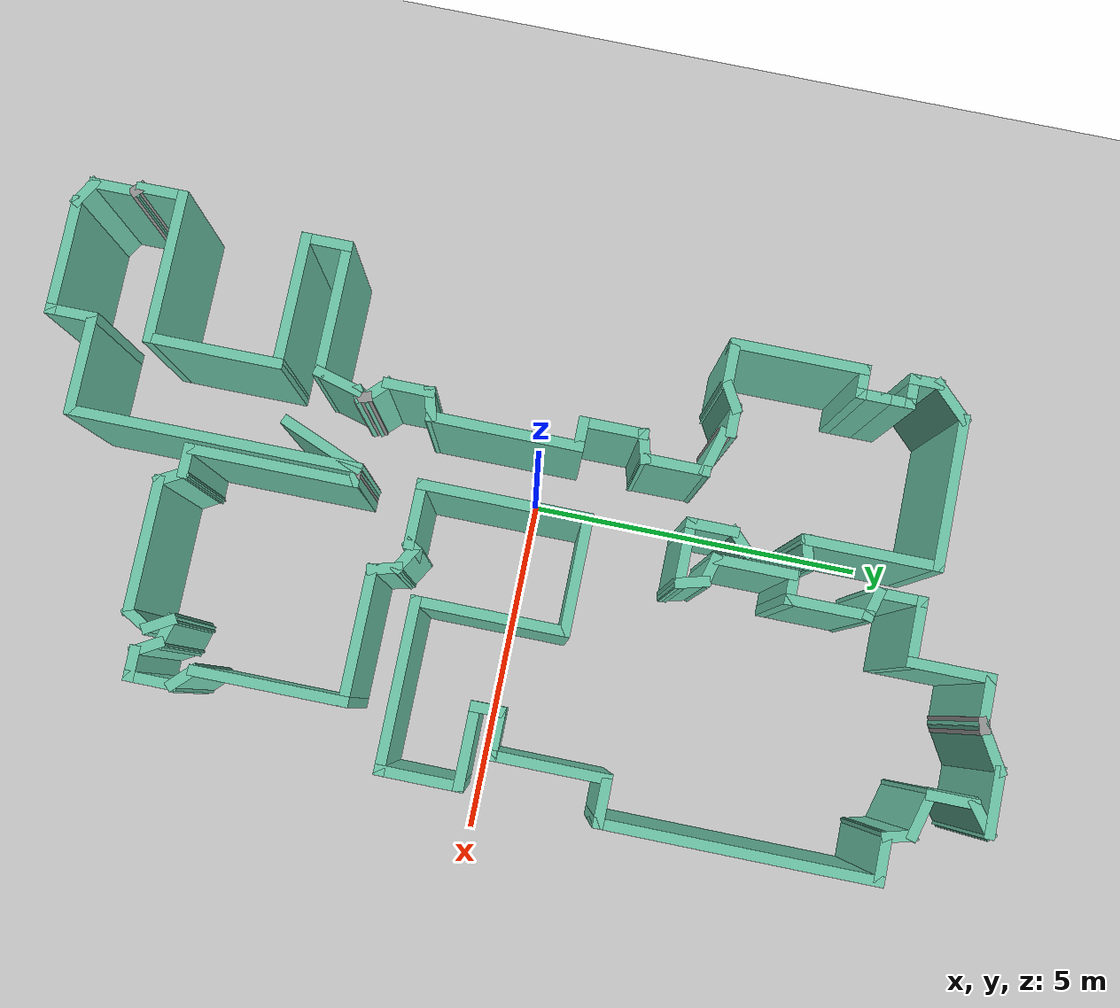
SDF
<sdf version="1.7">
 <world name="default">
  <model name="ground_plane">
   <static>1</static>
   <link name="link">
    <collision name="collision">
     <geometry><plane><normal>0 0 1</normal><size>100 100</size></plane></geometry>
     <surface>
      <contact><collide_bitmask>65535</collide_bitmask></contact>
      <friction><ode><mu>100</mu><mu2>50</mu2></ode></friction>
     </surface>
    </collision>
    <visual name="visual">
     <cast_shadows>0</cast_shadows>
     <geometry><plane><normal>0 0 1</normal><size>100 100</size></plane></geometry>
     <material>
      <script><uri>file://media/materials/scripts/gazebo.material</uri><name>Gazebo/Grey</name></script>
     </material>
    </visual>
   </link>
  </model>
  <model name="map_7">
   <pose>0.65828 -0.13295 0 0 -0 0</pose>
   <link name="Wall_0">
    <collision name="Wall_0_Collision">
     <geometry><box><size>1 0.15 2.5</size></box></geometry>
     <pose>0 0 1.25 0 -0 0</pose>
    </collision>
    <visual name="Wall_0_Visual">
     <pose>0 0 1.25 0 -0 0</pose>
     <geometry><box><size>1 0.15 2.5</size></box></geometry>
     <material>
      <script><uri>file://media/materials/scripts/gazebo.material</uri><name>Gazebo/Grey</name></script>
      <ambient>0.435294 0.796078 0.67451 1</ambient>
     </material>
     <meta><layer>0</layer></meta>
    </visual>
    <pose>2.38063 7.06866 0 0 -0 3.14159</pose>
   </link>
   <link name="Wall_1">
    <collision name="Wall_1_Collision">
     <geometry><box><size>0.75 0.15 2.5</size></box></geometry>
     <pose>0 0 1.25 0 -0 0</pose>
    </collision>
    <visual name="Wall_1_Visual">
     <pose>0 0 1.25 0 -0 0</pose>
     <geometry><box><size>0.75 0.15 2.5</size></box></geometry>
     <material>
      <script><uri>file://media/materials/scripts/gazebo.material</uri><name>Gazebo/Grey</name></script>
      <ambient>0.435294 0.796078 0.67451 1</ambient>
     </material>
     <meta><layer>0</layer></meta>
    </visual>
    <pose>1.69582 6.91866 0 0 -0 -2.61799</pose>
   </link>
   <link name="Wall_10">
    <collision name="Wall_10_Collision">
     <geometry><box><size>1.25 0.15 2.5</size></box></geometry>
     <pose>0 0 1.25 0 -0 0</pose>
    </collision>
    <visual name="Wall_10_Visual">
     <pose>0 0 1.25 0 -0 0</pose>
     <geometry><box><size>1.25 0.15 2.5</size></box></geometry>
     <material>
      <script><uri>file://media/materials/scripts/gazebo.material</uri><name>Gazebo/Grey</name></script>
      <ambient>0.435294 0.796078 0.67451 1</ambient>
     </material>
     <meta><layer>0</layer></meta>
    </visual>
    <pose>0.73942 6.19278 0 0 -0 -1.5708</pose>
   </link>
   <link name="Wall_100">
    <collision name="Wall_100_Collision">
     <geometry><box><size>0.5 0.15 2.5</size></box></geometry>
     <pose>0 0 1.25 0 -0 0</pose>
    </collision>
    <visual name="Wall_100_Visual">
     <pose>0 0 1.25 0 -0 0</pose>
     <geometry><box><size>0.5 0.15 2.5</size></box></geometry>
     <material>
      <script><uri>file://media/materials/scripts/gazebo.material</uri><name>Gazebo/Grey</name></script>
      <ambient>0.435294 0.796078 0.67451 1</ambient>
     </material>
     <meta><layer>0</layer></meta>
    </visual>
    <pose>0.92429 -1.69529 0 0 -0 1.8326</pose>
   </link>
   <link name="Wall_101">
    <collision name="Wall_101_Collision">
     <geometry><box><size>0.5 0.15 2.5</size></box></geometry>
     <pose>0 0 1.25 0 -0 0</pose>
    </collision>
    <visual name="Wall_101_Visual">
     <pose>0 0 1.25 0 -0 0</pose>
     <geometry><box><size>0.5 0.15 2.5</size></box></geometry>
     <material>
      <script><uri>file://media/materials/scripts/gazebo.material</uri><name>Gazebo/Grey</name></script>
      <ambient>0.435294 0.796078 0.67451 1</ambient>
     </material>
     <meta><layer>0</layer></meta>
    </visual>
    <pose>0.727443 -1.43876 0 0 -0 2.61799</pose>
   </link>
   <link name="Wall_102">
    <collision name="Wall_102_Collision">
     <geometry><box><size>0.25 0.15 2.5</size></box></geometry>
     <pose>0 0 1.25 0 -0 0</pose>
    </collision>
    <visual name="Wall_102_Visual">
     <pose>0 0 1.25 0 -0 0</pose>
     <geometry><box><size>0.25 0.15 2.5</size></box></geometry>
     <material>
      <script><uri>file://media/materials/scripts/gazebo.material</uri><name>Gazebo/Grey</name></script>
      <ambient>0.435294 0.796078 0.67451 1</ambient>
     </material>
     <meta><layer>0</layer></meta>
    </visual>
    <pose>0.550888 -1.39456 0 0 -0 -2.0944</pose>
   </link>
   <link name="Wall_103">
    <collision name="Wall_103_Collision">
     <geometry><box><size>1 0.15 2.5</size></box></geometry>
     <pose>0 0 1.25 0 -0 0</pose>
    </collision>
    <visual name="Wall_103_Visual">
     <pose>0 0 1.25 0 -0 0</pose>
     <geometry><box><size>1 0.15 2.5</size></box></geometry>
     <material>
      <script><uri>file://media/materials/scripts/gazebo.material</uri><name>Gazebo/Grey</name></script>
      <ambient>0.435294 0.796078 0.67451 1</ambient>
     </material>
     <meta><layer>0</layer></meta>
    </visual>
    <pose>0.100888 -1.43786 0 0 -0 3.14159</pose>
   </link>
   <link name="Wall_104">
    <collision name="Wall_104_Collision">
     <geometry><box><size>2.5 0.15 2.5</size></box></geometry>
     <pose>0 0 1.25 0 -0 0</pose>
    </collision>
    <visual name="Wall_104_Visual">
     <pose>0 0 1.25 0 -0 0</pose>
     <geometry><box><size>2.5 0.15 2.5</size></box></geometry>
     <material>
      <script><uri>file://media/materials/scripts/gazebo.material</uri><name>Gazebo/Grey</name></script>
      <ambient>0.435294 0.796078 0.67451 1</ambient>
     </material>
     <meta><layer>0</layer></meta>
    </visual>
    <pose>-0.324112 -0.26286 0 0 -0 1.5708</pose>
   </link>
   <link name="Wall_105">
    <collision name="Wall_105_Collision">
     <geometry><box><size>1.75 0.15 2.5</size></box></geometry>
     <pose>0 0 1.25 0 -0 0</pose>
    </collision>
    <visual name="Wall_105_Visual">
     <pose>0 0 1.25 0 -0 0</pose>
     <geometry><box><size>1.75 0.15 2.5</size></box></geometry>
     <material>
      <script><uri>file://media/materials/scripts/gazebo.material</uri><name>Gazebo/Grey</name></script>
      <ambient>0.435294 0.796078 0.67451 1</ambient>
     </material>
     <meta><layer>0</layer></meta>
    </visual>
    <pose>0.475888 0.91214 0 0 -0 0</pose>
   </link>
   <link name="Wall_106">
    <collision name="Wall_106_Collision">
     <geometry><box><size>2.25 0.15 2.5</size></box></geometry>
     <pose>0 0 1.25 0 -0 0</pose>
    </collision>
    <visual name="Wall_106_Visual">
     <pose>0 0 1.25 0 -0 0</pose>
     <geometry><box><size>2.25 0.15 2.5</size></box></geometry>
     <material>
      <script><uri>file://media/materials/scripts/gazebo.material</uri><name>Gazebo/Grey</name></script>
      <ambient>0.435294 0.796078 0.67451 1</ambient>
     </material>
     <meta><layer>0</layer></meta>
    </visual>
    <pose>1.27589 -0.13786 0 0 -0 -1.5708</pose>
   </link>
   <link name="Wall_107">
    <collision name="Wall_107_Collision">
     <geometry><box><size>2.5 0.15 2.5</size></box></geometry>
     <pose>0 0 1.25 0 -0 0</pose>
    </collision>
    <visual name="Wall_107_Visual">
     <pose>0 0 1.25 0 -0 0</pose>
     <geometry><box><size>2.5 0.15 2.5</size></box></geometry>
     <material>
      <script><uri>file://media/materials/scripts/gazebo.material</uri><name>Gazebo/Grey</name></script>
      <ambient>0.435294 0.796078 0.67451 1</ambient>
     </material>
     <meta><layer>0</layer></meta>
    </visual>
    <pose>2.45089 -1.18786 0 0 -0 0</pose>
   </link>
   <link name="Wall_108">
    <collision name="Wall_108_Collision">
     <geometry><box><size>1.25 0.15 2.5</size></box></geometry>
     <pose>0 0 1.25 0 -0 0</pose>
    </collision>
    <visual name="Wall_108_Visual">
     <pose>0 0 1.25 0 -0 0</pose>
     <geometry><box><size>1.25 0.15 2.5</size></box></geometry>
     <material>
      <script><uri>file://media/materials/scripts/gazebo.material</uri><name>Gazebo/Grey</name></script>
      <ambient>0.435294 0.796078 0.67451 1</ambient>
     </material>
     <meta><layer>0</layer></meta>
    </visual>
    <pose>3.62589 -0.63786 0 0 -0 1.5708</pose>
   </link>
   <link name="Wall_109">
    <collision name="Wall_109_Collision">
     <geometry><box><size>1.25 0.15 2.5</size></box></geometry>
     <pose>0 0 1.25 0 -0 0</pose>
    </collision>
    <visual name="Wall_109_Visual">
     <pose>0 0 1.25 0 -0 0</pose>
     <geometry><box><size>1.25 0.15 2.5</size></box></geometry>
     <material>
      <script><uri>file://media/materials/scripts/gazebo.material</uri><name>Gazebo/Grey</name></script>
      <ambient>0.435294 0.796078 0.67451 1</ambient>
     </material>
     <meta><layer>0</layer></meta>
    </visual>
    <pose>3.07589 -0.08786 0 0 -0 3.14159</pose>
   </link>
   <link name="Wall_11">
    <collision name="Wall_11_Collision">
     <geometry><box><size>1 0.15 2.5</size></box></geometry>
     <pose>0 0 1.25 0 -0 0</pose>
    </collision>
    <visual name="Wall_11_Visual">
     <pose>0 0 1.25 0 -0 0</pose>
     <geometry><box><size>1 0.15 2.5</size></box></geometry>
     <material>
      <script><uri>file://media/materials/scripts/gazebo.material</uri><name>Gazebo/Grey</name></script>
      <ambient>0.435294 0.796078 0.67451 1</ambient>
     </material>
     <meta><layer>0</layer></meta>
    </visual>
    <pose>0.31442 5.64278 0 0 -0 3.14159</pose>
   </link>
   <link name="Wall_110">
    <collision name="Wall_110_Collision">
     <geometry><box><size>0.5 0.15 2.5</size></box></geometry>
     <pose>0 0 1.25 0 -0 0</pose>
    </collision>
    <visual name="Wall_110_Visual">
     <pose>0 0 1.25 0 -0 0</pose>
     <geometry><box><size>0.5 0.15 2.5</size></box></geometry>
     <material>
      <script><uri>file://media/materials/scripts/gazebo.material</uri><name>Gazebo/Grey</name></script>
      <ambient>0.435294 0.796078 0.67451 1</ambient>
     </material>
     <meta><layer>0</layer></meta>
    </visual>
    <pose>2.52589 0.08714 0 0 -0 1.5708</pose>
   </link>
   <link name="Wall_111">
    <collision name="Wall_111_Collision">
     <geometry><box><size>0.75 0.15 2.5</size></box></geometry>
     <pose>0 0 1.25 0 -0 0</pose>
    </collision>
    <visual name="Wall_111_Visual">
     <pose>0 0 1.25 0 -0 0</pose>
     <geometry><box><size>0.75 0.15 2.5</size></box></geometry>
     <material>
      <script><uri>file://media/materials/scripts/gazebo.material</uri><name>Gazebo/Grey</name></script>
      <ambient>0.435294 0.796078 0.67451 1</ambient>
     </material>
     <meta><layer>0</layer></meta>
    </visual>
    <pose>2.82589 0.26214 0 0 -0 0</pose>
   </link>
   <link name="Wall_112">
    <collision name="Wall_112_Collision">
     <geometry><box><size>1.75 0.15 2.5</size></box></geometry>
     <pose>0 0 1.25 0 -0 0</pose>
    </collision>
    <visual name="Wall_112_Visual">
     <pose>0 0 1.25 0 -0 0</pose>
     <geometry><box><size>1.75 0.15 2.5</size></box></geometry>
     <material>
      <script><uri>file://media/materials/scripts/gazebo.material</uri><name>Gazebo/Grey</name></script>
      <ambient>0.435294 0.796078 0.67451 1</ambient>
     </material>
     <meta><layer>0</layer></meta>
    </visual>
    <pose>3.12589 1.06214 0 0 -0 1.5708</pose>
   </link>
   <link name="Wall_115">
    <collision name="Wall_115_Collision">
     <geometry><box><size>0.75 0.15 2.5</size></box></geometry>
     <pose>0 0 1.25 0 -0 0</pose>
    </collision>
    <visual name="Wall_115_Visual">
     <pose>0 0 1.25 0 -0 0</pose>
     <geometry><box><size>0.75 0.15 2.5</size></box></geometry>
     <material>
      <script><uri>file://media/materials/scripts/gazebo.material</uri><name>Gazebo/Grey</name></script>
      <ambient>0.435294 0.796078 0.67451 1</ambient>
     </material>
     <meta><layer>0</layer></meta>
    </visual>
    <pose>3.42589 1.86214 0 0 -0 0</pose>
   </link>
   <link name="Wall_116">
    <collision name="Wall_116_Collision">
     <geometry><box><size>4 0.15 2.5</size></box></geometry>
     <pose>0 0 1.25 0 -0 0</pose>
    </collision>
    <visual name="Wall_116_Visual">
     <pose>0 0 1.25 0 -0 0</pose>
     <geometry><box><size>4 0.15 2.5</size></box></geometry>
     <material>
      <script><uri>file://media/materials/scripts/gazebo.material</uri><name>Gazebo/Grey</name></script>
      <ambient>0.435294 0.796078 0.67451 1</ambient>
     </material>
     <meta><layer>0</layer></meta>
    </visual>
    <pose>3.72589 3.78714 0 0 -0 1.5708</pose>
   </link>
   <link name="Wall_117">
    <collision name="Wall_117_Collision">
     <geometry><box><size>0.75 0.15 2.5</size></box></geometry>
     <pose>0 0 1.25 0 -0 0</pose>
    </collision>
    <visual name="Wall_117_Visual">
     <pose>0 0 1.25 0 -0 0</pose>
     <geometry><box><size>0.75 0.15 2.5</size></box></geometry>
     <material>
      <script><uri>file://media/materials/scripts/gazebo.material</uri><name>Gazebo/Grey</name></script>
      <ambient>0.435294 0.796078 0.67451 1</ambient>
     </material>
     <meta><layer>0</layer></meta>
    </visual>
    <pose>3.42589 5.71214 0 0 -0 3.14159</pose>
   </link>
   <link name="Wall_118">
    <collision name="Wall_118_Collision">
     <geometry><box><size>0.5 0.15 2.5</size></box></geometry>
     <pose>0 0 1.25 0 -0 0</pose>
    </collision>
    <visual name="Wall_118_Visual">
     <pose>0 0 1.25 0 -0 0</pose>
     <geometry><box><size>0.5 0.15 2.5</size></box></geometry>
     <material>
      <script><uri>file://media/materials/scripts/gazebo.material</uri><name>Gazebo/Grey</name></script>
      <ambient>0.435294 0.796078 0.67451 1</ambient>
     </material>
     <meta><layer>0</layer></meta>
    </visual>
    <pose>3.0806 5.88118 0 0 -0 1.8326</pose>
   </link>
   <link name="Wall_119">
    <collision name="Wall_119_Collision">
     <geometry><box><size>0.75 0.15 2.5</size></box></geometry>
     <pose>0 0 1.25 0 -0 0</pose>
    </collision>
    <visual name="Wall_119_Visual">
     <pose>0 0 1.25 0 -0 0</pose>
     <geometry><box><size>0.75 0.15 2.5</size></box></geometry>
     <material>
      <script><uri>file://media/materials/scripts/gazebo.material</uri><name>Gazebo/Grey</name></script>
      <ambient>0.435294 0.796078 0.67451 1</ambient>
     </material>
     <meta><layer>0</layer></meta>
    </visual>
    <pose>2.74552 6.12786 0 0 -0 2.87979</pose>
   </link>
   <link name="Wall_122">
    <collision name="Wall_122_Collision">
     <geometry><box><size>0.75 0.15 2.5</size></box></geometry>
     <pose>0 0 1.25 0 -0 0</pose>
    </collision>
    <visual name="Wall_122_Visual">
     <pose>0 0 1.25 0 -0 0</pose>
     <geometry><box><size>0.75 0.15 2.5</size></box></geometry>
     <material>
      <script><uri>file://media/materials/scripts/gazebo.material</uri><name>Gazebo/Grey</name></script>
      <ambient>0.435294 0.796078 0.67451 1</ambient>
     </material>
     <meta><layer>0</layer></meta>
    </visual>
    <pose>2.45575 6.50551 0 0 -0 1.5708</pose>
   </link>
   <link name="Wall_123">
    <collision name="Wall_123_Collision">
     <geometry><box><size>0.587801 0.15 2.5</size></box></geometry>
     <pose>0 0 1.25 0 -0 0</pose>
    </collision>
    <visual name="Wall_123_Visual">
     <pose>0 0 1.25 0 -0 0</pose>
     <geometry><box><size>0.587801 0.15 2.5</size></box></geometry>
     <material>
      <script><uri>file://media/materials/scripts/gazebo.material</uri><name>Gazebo/Grey</name></script>
      <ambient>0.435294 0.796078 0.67451 1</ambient>
     </material>
     <meta><layer>0</layer></meta>
    </visual>
    <pose>2.63069 6.93708 0 0 -0 0.644866</pose>
   </link>
   <link name="Wall_125">
    <collision name="Wall_125_Collision">
     <geometry><box><size>1.32079 0.15 2.5</size></box></geometry>
     <pose>0 0 1.25 0 -0 0</pose>
    </collision>
    <visual name="Wall_125_Visual">
     <pose>0 0 1.25 0 -0 0</pose>
     <geometry><box><size>1.32079 0.15 2.5</size></box></geometry>
     <material>
      <script><uri>file://media/materials/scripts/gazebo.material</uri><name>Gazebo/Grey</name></script>
      <ambient>0.435294 0.796078 0.67451 1</ambient>
     </material>
     <meta><layer>0</layer></meta>
    </visual>
    <pose>-0.594171 -2.91242 0 0 -0 1.17967</pose>
   </link>
   <link name="Wall_16">
    <collision name="Wall_16_Collision">
     <geometry><box><size>0.75 0.15 2.5</size></box></geometry>
     <pose>0 0 1.25 0 -0 0</pose>
    </collision>
    <visual name="Wall_16_Visual">
     <pose>0 0 1.25 0 -0 0</pose>
     <geometry><box><size>0.75 0.15 2.5</size></box></geometry>
     <material>
      <script><uri>file://media/materials/scripts/gazebo.material</uri><name>Gazebo/Grey</name></script>
      <ambient>0.435294 0.796078 0.67451 1</ambient>
     </material>
     <meta><layer>0</layer></meta>
    </visual>
    <pose>-0.11058 5.34278 0 0 -0 -1.5708</pose>
   </link>
   <link name="Wall_17">
    <collision name="Wall_17_Collision">
     <geometry><box><size>0.5 0.15 2.5</size></box></geometry>
     <pose>0 0 1.25 0 -0 0</pose>
    </collision>
    <visual name="Wall_17_Visual">
     <pose>0 0 1.25 0 -0 0</pose>
     <geometry><box><size>0.5 0.15 2.5</size></box></geometry>
     <material>
      <script><uri>file://media/materials/scripts/gazebo.material</uri><name>Gazebo/Grey</name></script>
      <ambient>0.435294 0.796078 0.67451 1</ambient>
     </material>
     <meta><layer>0</layer></meta>
    </visual>
    <pose>0.058457 4.99749 0 0 -0 -0.261799</pose>
   </link>
   <link name="Wall_18">
    <collision name="Wall_18_Collision">
     <geometry><box><size>1.25 0.15 2.5</size></box></geometry>
     <pose>0 0 1.25 0 -0 0</pose>
    </collision>
    <visual name="Wall_18_Visual">
     <pose>0 0 1.25 0 -0 0</pose>
     <geometry><box><size>1.25 0.15 2.5</size></box></geometry>
     <material>
      <script><uri>file://media/materials/scripts/gazebo.material</uri><name>Gazebo/Grey</name></script>
      <ambient>0.435294 0.796078 0.67451 1</ambient>
     </material>
     <meta><layer>0</layer></meta>
    </visual>
    <pose>0.227494 4.40219 0 0 -0 -1.5708</pose>
   </link>
   <link name="Wall_19">
    <collision name="Wall_19_Collision">
     <geometry><box><size>0.5 0.15 2.5</size></box></geometry>
     <pose>0 0 1.25 0 -0 0</pose>
    </collision>
    <visual name="Wall_19_Visual">
     <pose>0 0 1.25 0 -0 0</pose>
     <geometry><box><size>0.5 0.15 2.5</size></box></geometry>
     <material>
      <script><uri>file://media/materials/scripts/gazebo.material</uri><name>Gazebo/Grey</name></script>
      <ambient>0.435294 0.796078 0.67451 1</ambient>
     </material>
     <meta><layer>0</layer></meta>
    </visual>
    <pose>0.052494 3.8522 0 0 -0 3.14159</pose>
   </link>
   <link name="Wall_20">
    <collision name="Wall_20_Collision">
     <geometry><box><size>1.25 0.15 2.5</size></box></geometry>
     <pose>0 0 1.25 0 -0 0</pose>
    </collision>
    <visual name="Wall_20_Visual">
     <pose>0 0 1.25 0 -0 0</pose>
     <geometry><box><size>1.25 0.15 2.5</size></box></geometry>
     <material>
      <script><uri>file://media/materials/scripts/gazebo.material</uri><name>Gazebo/Grey</name></script>
      <ambient>0.435294 0.796078 0.67451 1</ambient>
     </material>
     <meta><layer>0</layer></meta>
    </visual>
    <pose>-0.122506 3.3022 0 0 -0 -1.5708</pose>
   </link>
   <link name="Wall_21">
    <collision name="Wall_21_Collision">
     <geometry><box><size>0.5 0.15 2.5</size></box></geometry>
     <pose>0 0 1.25 0 -0 0</pose>
    </collision>
    <visual name="Wall_21_Visual">
     <pose>0 0 1.25 0 -0 0</pose>
     <geometry><box><size>0.5 0.15 2.5</size></box></geometry>
     <material>
      <script><uri>file://media/materials/scripts/gazebo.material</uri><name>Gazebo/Grey</name></script>
      <ambient>0.435294 0.796078 0.67451 1</ambient>
     </material>
     <meta><layer>0</layer></meta>
    </visual>
    <pose>0.046531 2.7069 0 0 -0 -0.261799</pose>
   </link>
   <link name="Wall_22">
    <collision name="Wall_22_Collision">
     <geometry><box><size>0.5 0.15 2.5</size></box></geometry>
     <pose>0 0 1.25 0 -0 0</pose>
    </collision>
    <visual name="Wall_22_Visual">
     <pose>0 0 1.25 0 -0 0</pose>
     <geometry><box><size>0.5 0.15 2.5</size></box></geometry>
     <material>
      <script><uri>file://media/materials/scripts/gazebo.material</uri><name>Gazebo/Grey</name></script>
      <ambient>0.435294 0.796078 0.67451 1</ambient>
     </material>
     <meta><layer>0</layer></meta>
    </visual>
    <pose>0.260861 2.49257 0 0 -0 -1.309</pose>
   </link>
   <link name="Wall_25">
    <collision name="Wall_25_Collision">
     <geometry><box><size>1 0.15 2.5</size></box></geometry>
     <pose>0 0 1.25 0 -0 0</pose>
    </collision>
    <visual name="Wall_25_Visual">
     <pose>0 0 1.25 0 -0 0</pose>
     <geometry><box><size>1 0.15 2.5</size></box></geometry>
     <material>
      <script><uri>file://media/materials/scripts/gazebo.material</uri><name>Gazebo/Grey</name></script>
      <ambient>0.435294 0.796078 0.67451 1</ambient>
     </material>
     <meta><layer>0</layer></meta>
    </visual>
    <pose>-0.118845 2.32353 0 0 -0 3.14159</pose>
   </link>
   <link name="Wall_26">
    <collision name="Wall_26_Collision">
     <geometry><box><size>0.75 0.15 2.5</size></box></geometry>
     <pose>0 0 1.25 0 -0 0</pose>
    </collision>
    <visual name="Wall_26_Visual">
     <pose>0 0 1.25 0 -0 0</pose>
     <geometry><box><size>0.75 0.15 2.5</size></box></geometry>
     <material>
      <script><uri>file://media/materials/scripts/gazebo.material</uri><name>Gazebo/Grey</name></script>
      <ambient>0.435294 0.796078 0.67451 1</ambient>
     </material>
     <meta><layer>0</layer></meta>
    </visual>
    <pose>-0.543845 2.62353 0 0 -0 1.5708</pose>
   </link>
   <link name="Wall_29">
    <collision name="Wall_29_Collision">
     <geometry><box><size>0.5 0.15 2.5</size></box></geometry>
     <pose>0 0 1.25 0 -0 0</pose>
    </collision>
    <visual name="Wall_29_Visual">
     <pose>0 0 1.25 0 -0 0</pose>
     <geometry><box><size>0.5 0.15 2.5</size></box></geometry>
     <material>
      <script><uri>file://media/materials/scripts/gazebo.material</uri><name>Gazebo/Grey</name></script>
      <ambient>0.435294 0.796078 0.67451 1</ambient>
     </material>
     <meta><layer>0</layer></meta>
    </visual>
    <pose>-0.420102 3.04728 0 0 -0 0.785398</pose>
   </link>
   <link name="Wall_30">
    <collision name="Wall_30_Collision">
     <geometry><box><size>1 0.15 2.5</size></box></geometry>
     <pose>0 0 1.25 0 -0 0</pose>
    </collision>
    <visual name="Wall_30_Visual">
     <pose>0 0 1.25 0 -0 0</pose>
     <geometry><box><size>1 0.15 2.5</size></box></geometry>
     <material>
      <script><uri>file://media/materials/scripts/gazebo.material</uri><name>Gazebo/Grey</name></script>
      <ambient>0.435294 0.796078 0.67451 1</ambient>
     </material>
     <meta><layer>0</layer></meta>
    </visual>
    <pose>-0.296358 3.59602 0 0 -0 1.5708</pose>
   </link>
   <link name="Wall_31">
    <collision name="Wall_31_Collision">
     <geometry><box><size>0.5 0.15 2.5</size></box></geometry>
     <pose>0 0 1.25 0 -0 0</pose>
    </collision>
    <visual name="Wall_31_Visual">
     <pose>0 0 1.25 0 -0 0</pose>
     <geometry><box><size>0.5 0.15 2.5</size></box></geometry>
     <material>
      <script><uri>file://media/materials/scripts/gazebo.material</uri><name>Gazebo/Grey</name></script>
      <ambient>0.435294 0.796078 0.67451 1</ambient>
     </material>
     <meta><layer>0</layer></meta>
    </visual>
    <pose>-0.465395 3.97573 0 0 -0 -2.87979</pose>
   </link>
   <link name="Wall_32">
    <collision name="Wall_32_Collision">
     <geometry><box><size>2 0.15 2.5</size></box></geometry>
     <pose>0 0 1.25 0 -0 0</pose>
    </collision>
    <visual name="Wall_32_Visual">
     <pose>0 0 1.25 0 -0 0</pose>
     <geometry><box><size>2 0.15 2.5</size></box></geometry>
     <material>
      <script><uri>file://media/materials/scripts/gazebo.material</uri><name>Gazebo/Grey</name></script>
      <ambient>0.435294 0.796078 0.67451 1</ambient>
     </material>
     <meta><layer>0</layer></meta>
    </visual>
    <pose>-0.634432 4.85543 0 0 -0 1.5708</pose>
   </link>
   <link name="Wall_33">
    <collision name="Wall_33_Collision">
     <geometry><box><size>2.25 0.15 2.5</size></box></geometry>
     <pose>0 0 1.25 0 -0 0</pose>
    </collision>
    <visual name="Wall_33_Visual">
     <pose>0 0 1.25 0 -0 0</pose>
     <geometry><box><size>2.25 0.15 2.5</size></box></geometry>
     <material>
      <script><uri>file://media/materials/scripts/gazebo.material</uri><name>Gazebo/Grey</name></script>
      <ambient>0.435294 0.796078 0.67451 1</ambient>
     </material>
     <meta><layer>0</layer></meta>
    </visual>
    <pose>-1.68443 5.78043 0 0 -0 3.14159</pose>
   </link>
   <link name="Wall_34">
    <collision name="Wall_34_Collision">
     <geometry><box><size>0.75 0.15 2.5</size></box></geometry>
     <pose>0 0 1.25 0 -0 0</pose>
    </collision>
    <visual name="Wall_34_Visual">
     <pose>0 0 1.25 0 -0 0</pose>
     <geometry><box><size>0.75 0.15 2.5</size></box></geometry>
     <material>
      <script><uri>file://media/materials/scripts/gazebo.material</uri><name>Gazebo/Grey</name></script>
      <ambient>0.435294 0.796078 0.67451 1</ambient>
     </material>
     <meta><layer>0</layer></meta>
    </visual>
    <pose>-2.94656 5.5683 0 0 -0 -2.35619</pose>
   </link>
   <link name="Wall_35">
    <collision name="Wall_35_Collision">
     <geometry><box><size>0.5 0.15 2.5</size></box></geometry>
     <pose>0 0 1.25 0 -0 0</pose>
    </collision>
    <visual name="Wall_35_Visual">
     <pose>0 0 1.25 0 -0 0</pose>
     <geometry><box><size>0.5 0.15 2.5</size></box></geometry>
     <material>
      <script><uri>file://media/materials/scripts/gazebo.material</uri><name>Gazebo/Grey</name></script>
      <ambient>0.435294 0.796078 0.67451 1</ambient>
     </material>
     <meta><layer>0</layer></meta>
    </visual>
    <pose>-3.1587 5.18117 0 0 -0 -1.5708</pose>
   </link>
   <link name="Wall_36">
    <collision name="Wall_36_Collision">
     <geometry><box><size>0.5 0.15 2.5</size></box></geometry>
     <pose>0 0 1.25 0 -0 0</pose>
    </collision>
    <visual name="Wall_36_Visual">
     <pose>0 0 1.25 0 -0 0</pose>
     <geometry><box><size>0.5 0.15 2.5</size></box></geometry>
     <material>
      <script><uri>file://media/materials/scripts/gazebo.material</uri><name>Gazebo/Grey</name></script>
      <ambient>0.435294 0.796078 0.67451 1</ambient>
     </material>
     <meta><layer>0</layer></meta>
    </visual>
    <pose>-2.9837 5.00617 0 0 -0 0</pose>
   </link>
   <link name="Wall_37">
    <collision name="Wall_37_Collision">
     <geometry><box><size>0.5 0.15 2.5</size></box></geometry>
     <pose>0 0 1.25 0 -0 0</pose>
    </collision>
    <visual name="Wall_37_Visual">
     <pose>0 0 1.25 0 -0 0</pose>
     <geometry><box><size>0.5 0.15 2.5</size></box></geometry>
     <material>
      <script><uri>file://media/materials/scripts/gazebo.material</uri><name>Gazebo/Grey</name></script>
      <ambient>0.435294 0.796078 0.67451 1</ambient>
     </material>
     <meta><layer>0</layer></meta>
    </visual>
    <pose>-2.8087 4.83117 0 0 -0 -1.5708</pose>
   </link>
   <link name="Wall_38">
    <collision name="Wall_38_Collision">
     <geometry><box><size>0.5 0.15 2.5</size></box></geometry>
     <pose>0 0 1.25 0 -0 0</pose>
    </collision>
    <visual name="Wall_38_Visual">
     <pose>0 0 1.25 0 -0 0</pose>
     <geometry><box><size>0.5 0.15 2.5</size></box></geometry>
     <material>
      <script><uri>file://media/materials/scripts/gazebo.material</uri><name>Gazebo/Grey</name></script>
      <ambient>0.435294 0.796078 0.67451 1</ambient>
     </material>
     <meta><layer>0</layer></meta>
    </visual>
    <pose>-2.8087 4.48117 0 0 -0 -1.5708</pose>
   </link>
   <link name="Wall_39">
    <collision name="Wall_39_Collision">
     <geometry><box><size>0.5 0.15 2.5</size></box></geometry>
     <pose>0 0 1.25 0 -0 0</pose>
    </collision>
    <visual name="Wall_39_Visual">
     <pose>0 0 1.25 0 -0 0</pose>
     <geometry><box><size>0.5 0.15 2.5</size></box></geometry>
     <material>
      <script><uri>file://media/materials/scripts/gazebo.material</uri><name>Gazebo/Grey</name></script>
      <ambient>0.435294 0.796078 0.67451 1</ambient>
     </material>
     <meta><layer>0</layer></meta>
    </visual>
    <pose>-2.9837 4.30617 0 0 -0 3.14159</pose>
   </link>
   <link name="Wall_4">
    <collision name="Wall_4_Collision">
     <geometry><box><size>0.25 0.15 2.5</size></box></geometry>
     <pose>0 0 1.25 0 -0 0</pose>
    </collision>
    <visual name="Wall_4_Visual">
     <pose>0 0 1.25 0 -0 0</pose>
     <geometry><box><size>0.25 0.15 2.5</size></box></geometry>
     <material>
      <script><uri>file://media/materials/scripts/gazebo.material</uri><name>Gazebo/Grey</name></script>
      <ambient>1 1 1 1</ambient>
     </material>
     <meta><layer>0</layer></meta>
    </visual>
    <pose>1.38772 6.75572 0 0 -0 -2.87979</pose>
   </link>
   <link name="Wall_40">
    <collision name="Wall_40_Collision">
     <geometry><box><size>2 0.15 2.5</size></box></geometry>
     <pose>0 0 1.25 0 -0 0</pose>
    </collision>
    <visual name="Wall_40_Visual">
     <pose>0 0 1.25 0 -0 0</pose>
     <geometry><box><size>2 0.15 2.5</size></box></geometry>
     <material>
      <script><uri>file://media/materials/scripts/gazebo.material</uri><name>Gazebo/Grey</name></script>
      <ambient>0.435294 0.796078 0.67451 1</ambient>
     </material>
     <meta><layer>0</layer></meta>
    </visual>
    <pose>-3.1587 3.38117 0 0 -0 -1.5708</pose>
   </link>
   <link name="Wall_41">
    <collision name="Wall_41_Collision">
     <geometry><box><size>0.75 0.15 2.5</size></box></geometry>
     <pose>0 0 1.25 0 -0 0</pose>
    </collision>
    <visual name="Wall_41_Visual">
     <pose>0 0 1.25 0 -0 0</pose>
     <geometry><box><size>0.75 0.15 2.5</size></box></geometry>
     <material>
      <script><uri>file://media/materials/scripts/gazebo.material</uri><name>Gazebo/Grey</name></script>
      <ambient>0.435294 0.796078 0.67451 1</ambient>
     </material>
     <meta><layer>0</layer></meta>
    </visual>
    <pose>-2.8587 2.45617 0 0 -0 0</pose>
   </link>
   <link name="Wall_42">
    <collision name="Wall_42_Collision">
     <geometry><box><size>0.5 0.15 2.5</size></box></geometry>
     <pose>0 0 1.25 0 -0 0</pose>
    </collision>
    <visual name="Wall_42_Visual">
     <pose>0 0 1.25 0 -0 0</pose>
     <geometry><box><size>0.5 0.15 2.5</size></box></geometry>
     <material>
      <script><uri>file://media/materials/scripts/gazebo.material</uri><name>Gazebo/Grey</name></script>
      <ambient>0.435294 0.796078 0.67451 1</ambient>
     </material>
     <meta><layer>0</layer></meta>
    </visual>
    <pose>-2.40714 2.54367 0 0 -0 0.523599</pose>
   </link>
   <link name="Wall_43">
    <collision name="Wall_43_Collision">
     <geometry><box><size>0.5 0.15 2.5</size></box></geometry>
     <pose>0 0 1.25 0 -0 0</pose>
    </collision>
    <visual name="Wall_43_Visual">
     <pose>0 0 1.25 0 -0 0</pose>
     <geometry><box><size>0.5 0.15 2.5</size></box></geometry>
     <material>
      <script><uri>file://media/materials/scripts/gazebo.material</uri><name>Gazebo/Grey</name></script>
      <ambient>0.435294 0.796078 0.67451 1</ambient>
     </material>
     <meta><layer>0</layer></meta>
    </visual>
    <pose>-2.08059 2.63117 0 0 -0 0</pose>
   </link>
   <link name="Wall_44">
    <collision name="Wall_44_Collision">
     <geometry><box><size>0.25 0.15 2.5</size></box></geometry>
     <pose>0 0 1.25 0 -0 0</pose>
    </collision>
    <visual name="Wall_44_Visual">
     <pose>0 0 1.25 0 -0 0</pose>
     <geometry><box><size>0.25 0.15 2.5</size></box></geometry>
     <material>
      <script><uri>file://media/materials/scripts/gazebo.material</uri><name>Gazebo/Grey</name></script>
      <ambient>1 1 1 1</ambient>
     </material>
     <meta><layer>0</layer></meta>
    </visual>
    <pose>-1.89265 2.58288 0 0 -0 -1.309</pose>
   </link>
   <link name="Wall_45">
    <collision name="Wall_45_Collision">
     <geometry><box><size>0.75 0.15 2.5</size></box></geometry>
     <pose>0 0 1.25 0 -0 0</pose>
    </collision>
    <visual name="Wall_45_Visual">
     <pose>0 0 1.25 0 -0 0</pose>
     <geometry><box><size>0.75 0.15 2.5</size></box></geometry>
     <material>
      <script><uri>file://media/materials/scripts/gazebo.material</uri><name>Gazebo/Grey</name></script>
      <ambient>0.435294 0.796078 0.67451 1</ambient>
     </material>
     <meta><layer>0</layer></meta>
    </visual>
    <pose>-1.58993 2.45693 0 0 -0 -0.261799</pose>
   </link>
   <link name="Wall_46">
    <collision name="Wall_46_Collision">
     <geometry><box><size>1 0.15 2.5</size></box></geometry>
     <pose>0 0 1.25 0 -0 0</pose>
    </collision>
    <visual name="Wall_46_Visual">
     <pose>0 0 1.25 0 -0 0</pose>
     <geometry><box><size>1 0.15 2.5</size></box></geometry>
     <material>
      <script><uri>file://media/materials/scripts/gazebo.material</uri><name>Gazebo/Grey</name></script>
      <ambient>0.435294 0.796078 0.67451 1</ambient>
     </material>
     <meta><layer>0</layer></meta>
    </visual>
    <pose>-1.30015 1.95429 0 0 -0 -1.5708</pose>
   </link>
   <link name="Wall_47">
    <collision name="Wall_47_Collision">
     <geometry><box><size>0.5 0.15 2.5</size></box></geometry>
     <pose>0 0 1.25 0 -0 0</pose>
    </collision>
    <visual name="Wall_47_Visual">
     <pose>0 0 1.25 0 -0 0</pose>
     <geometry><box><size>0.5 0.15 2.5</size></box></geometry>
     <material>
      <script><uri>file://media/materials/scripts/gazebo.material</uri><name>Gazebo/Grey</name></script>
      <ambient>0.435294 0.796078 0.67451 1</ambient>
     </material>
     <meta><layer>0</layer></meta>
    </visual>
    <pose>-1.46919 1.48399 0 0 -0 -2.87979</pose>
   </link>
   <link name="Wall_48">
    <collision name="Wall_48_Collision">
     <geometry><box><size>1 0.15 2.5</size></box></geometry>
     <pose>0 0 1.25 0 -0 0</pose>
    </collision>
    <visual name="Wall_48_Visual">
     <pose>0 0 1.25 0 -0 0</pose>
     <geometry><box><size>1 0.15 2.5</size></box></geometry>
     <material>
      <script><uri>file://media/materials/scripts/gazebo.material</uri><name>Gazebo/Grey</name></script>
      <ambient>0.435294 0.796078 0.67451 1</ambient>
     </material>
     <meta><layer>0</layer></meta>
    </visual>
    <pose>-1.63822 1.0137 0 0 -0 -1.5708</pose>
   </link>
   <link name="Wall_49">
    <collision name="Wall_49_Collision">
     <geometry><box><size>0.5 0.15 2.5</size></box></geometry>
     <pose>0 0 1.25 0 -0 0</pose>
    </collision>
    <visual name="Wall_49_Visual">
     <pose>0 0 1.25 0 -0 0</pose>
     <geometry><box><size>0.5 0.15 2.5</size></box></geometry>
     <material>
      <script><uri>file://media/materials/scripts/gazebo.material</uri><name>Gazebo/Grey</name></script>
      <ambient>0.435294 0.796078 0.67451 1</ambient>
     </material>
     <meta><layer>0</layer></meta>
    </visual>
    <pose>-1.46322 0.588701 0 0 -0 0</pose>
   </link>
   <link name="Wall_5">
    <collision name="Wall_5_Collision">
     <geometry><box><size>0.75 0.15 2.5</size></box></geometry>
     <pose>0 0 1.25 0 -0 0</pose>
    </collision>
    <visual name="Wall_5_Visual">
     <pose>0 0 1.25 0 -0 0</pose>
     <geometry><box><size>0.75 0.15 2.5</size></box></geometry>
     <material>
      <script><uri>file://media/materials/scripts/gazebo.material</uri><name>Gazebo/Grey</name></script>
      <ambient>0.435294 0.796078 0.67451 1</ambient>
     </material>
     <meta><layer>0</layer></meta>
    </visual>
    <pose>1.03942 6.74278 0 0 -0 3.14159</pose>
   </link>
   <link name="Wall_50">
    <collision name="Wall_50_Collision">
     <geometry><box><size>2.25 0.15 2.5</size></box></geometry>
     <pose>0 0 1.25 0 -0 0</pose>
    </collision>
    <visual name="Wall_50_Visual">
     <pose>0 0 1.25 0 -0 0</pose>
     <geometry><box><size>2.25 0.15 2.5</size></box></geometry>
     <material>
      <script><uri>file://media/materials/scripts/gazebo.material</uri><name>Gazebo/Grey</name></script>
      <ambient>0.435294 0.796078 0.67451 1</ambient>
     </material>
     <meta><layer>0</layer></meta>
    </visual>
    <pose>-1.28822 -0.4613 0 0 -0 -1.5708</pose>
   </link>
   <link name="Wall_55">
    <collision name="Wall_55_Collision">
     <geometry><box><size>0.5 0.15 2.5</size></box></geometry>
     <pose>0 0 1.25 0 -0 0</pose>
    </collision>
    <visual name="Wall_55_Visual">
     <pose>0 0 1.25 0 -0 0</pose>
     <geometry><box><size>0.5 0.15 2.5</size></box></geometry>
     <material>
      <script><uri>file://media/materials/scripts/gazebo.material</uri><name>Gazebo/Grey</name></script>
      <ambient>0.435294 0.796078 0.67451 1</ambient>
     </material>
     <meta><layer>0</layer></meta>
    </visual>
    <pose>-1.45726 -1.55659 0 0 -0 -2.87979</pose>
   </link>
   <link name="Wall_56">
    <collision name="Wall_56_Collision">
     <geometry><box><size>0.75 0.15 2.5</size></box></geometry>
     <pose>0 0 1.25 0 -0 0</pose>
    </collision>
    <visual name="Wall_56_Visual">
     <pose>0 0 1.25 0 -0 0</pose>
     <geometry><box><size>0.75 0.15 2.5</size></box></geometry>
     <material>
      <script><uri>file://media/materials/scripts/gazebo.material</uri><name>Gazebo/Grey</name></script>
      <ambient>0.435294 0.796078 0.67451 1</ambient>
     </material>
     <meta><layer>0</layer></meta>
    </visual>
    <pose>-1.6263 -1.90189 0 0 -0 -1.5708</pose>
   </link>
   <link name="Wall_57">
    <collision name="Wall_57_Collision">
     <geometry><box><size>0.5 0.15 2.5</size></box></geometry>
     <pose>0 0 1.25 0 -0 0</pose>
    </collision>
    <visual name="Wall_57_Visual">
     <pose>0 0 1.25 0 -0 0</pose>
     <geometry><box><size>0.5 0.15 2.5</size></box></geometry>
     <material>
      <script><uri>file://media/materials/scripts/gazebo.material</uri><name>Gazebo/Grey</name></script>
      <ambient>0.435294 0.796078 0.67451 1</ambient>
     </material>
     <meta><layer>0</layer></meta>
    </visual>
    <pose>-1.50255 -2.32563 0 0 -0 -0.785398</pose>
   </link>
   <link name="Wall_58">
    <collision name="Wall_58_Collision">
     <geometry><box><size>0.25 0.15 2.5</size></box></geometry>
     <pose>0 0 1.25 0 -0 0</pose>
    </collision>
    <visual name="Wall_58_Visual">
     <pose>0 0 1.25 0 -0 0</pose>
     <geometry><box><size>0.25 0.15 2.5</size></box></geometry>
     <material>
      <script><uri>file://media/materials/scripts/gazebo.material</uri><name>Gazebo/Grey</name></script>
      <ambient>1 1 1 1</ambient>
     </material>
     <meta><layer>0</layer></meta>
    </visual>
    <pose>-1.36587 -2.49767 0 0 -0 -1.309</pose>
   </link>
   <link name="Wall_59">
    <collision name="Wall_59_Collision">
     <geometry><box><size>0.25 0.15 2.5</size></box></geometry>
     <pose>0 0 1.25 0 -0 0</pose>
    </collision>
    <visual name="Wall_59_Visual">
     <pose>0 0 1.25 0 -0 0</pose>
     <geometry><box><size>0.25 0.15 2.5</size></box></geometry>
     <material>
      <script><uri>file://media/materials/scripts/gazebo.material</uri><name>Gazebo/Grey</name></script>
      <ambient>0.435294 0.796078 0.67451 1</ambient>
     </material>
     <meta><layer>0</layer></meta>
    </visual>
    <pose>-1.39623 -2.57097 0 0 -0 -2.61799</pose>
   </link>
   <link name="Wall_60">
    <collision name="Wall_60_Collision">
     <geometry><box><size>0.75 0.15 2.5</size></box></geometry>
     <pose>0 0 1.25 0 -0 0</pose>
    </collision>
    <visual name="Wall_60_Visual">
     <pose>0 0 1.25 0 -0 0</pose>
     <geometry><box><size>0.75 0.15 2.5</size></box></geometry>
     <material>
      <script><uri>file://media/materials/scripts/gazebo.material</uri><name>Gazebo/Grey</name></script>
      <ambient>0.435294 0.796078 0.67451 1</ambient>
     </material>
     <meta><layer>0</layer></meta>
    </visual>
    <pose>-1.51718 -2.88574 0 0 -0 -1.8326</pose>
   </link>
   <link name="Wall_61">
    <collision name="Wall_61_Collision">
     <geometry><box><size>2 0.15 2.5</size></box></geometry>
     <pose>0 0 1.25 0 -0 0</pose>
    </collision>
    <visual name="Wall_61_Visual">
     <pose>0 0 1.25 0 -0 0</pose>
     <geometry><box><size>2 0.15 2.5</size></box></geometry>
     <material>
      <script><uri>file://media/materials/scripts/gazebo.material</uri><name>Gazebo/Grey</name></script>
      <ambient>0.435294 0.796078 0.67451 1</ambient>
     </material>
     <meta><layer>0</layer></meta>
    </visual>
    <pose>-2.51982 -3.17552 0 0 -0 3.14159</pose>
   </link>
   <link name="Wall_62">
    <collision name="Wall_62_Collision">
     <geometry><box><size>0.75 0.15 2.5</size></box></geometry>
     <pose>0 0 1.25 0 -0 0</pose>
    </collision>
    <visual name="Wall_62_Visual">
     <pose>0 0 1.25 0 -0 0</pose>
     <geometry><box><size>0.75 0.15 2.5</size></box></geometry>
     <material>
      <script><uri>file://media/materials/scripts/gazebo.material</uri><name>Gazebo/Grey</name></script>
      <ambient>0.435294 0.796078 0.67451 1</ambient>
     </material>
     <meta><layer>0</layer></meta>
    </visual>
    <pose>-3.44482 -3.47552 0 0 -0 -1.5708</pose>
   </link>
   <link name="Wall_63">
    <collision name="Wall_63_Collision">
     <geometry><box><size>2 0.15 2.5</size></box></geometry>
     <pose>0 0 1.25 0 -0 0</pose>
    </collision>
    <visual name="Wall_63_Visual">
     <pose>0 0 1.25 0 -0 0</pose>
     <geometry><box><size>2 0.15 2.5</size></box></geometry>
     <material>
      <script><uri>file://media/materials/scripts/gazebo.material</uri><name>Gazebo/Grey</name></script>
      <ambient>0.435294 0.796078 0.67451 1</ambient>
     </material>
     <meta><layer>0</layer></meta>
    </visual>
    <pose>-2.51982 -3.77552 0 0 -0 0</pose>
   </link>
   <link name="Wall_64">
    <collision name="Wall_64_Collision">
     <geometry><box><size>2 0.15 2.5</size></box></geometry>
     <pose>0 0 1.25 0 -0 0</pose>
    </collision>
    <visual name="Wall_64_Visual">
     <pose>0 0 1.25 0 -0 0</pose>
     <geometry><box><size>2 0.15 2.5</size></box></geometry>
     <material>
      <script><uri>file://media/materials/scripts/gazebo.material</uri><name>Gazebo/Grey</name></script>
      <ambient>0.435294 0.796078 0.67451 1</ambient>
     </material>
     <meta><layer>0</layer></meta>
    </visual>
    <pose>-1.59482 -4.70052 0 0 -0 -1.5708</pose>
   </link>
   <link name="Wall_65">
    <collision name="Wall_65_Collision">
     <geometry><box><size>2.25 0.15 2.5</size></box></geometry>
     <pose>0 0 1.25 0 -0 0</pose>
    </collision>
    <visual name="Wall_65_Visual">
     <pose>0 0 1.25 0 -0 0</pose>
     <geometry><box><size>2.25 0.15 2.5</size></box></geometry>
     <material>
      <script><uri>file://media/materials/scripts/gazebo.material</uri><name>Gazebo/Grey</name></script>
      <ambient>0.435294 0.796078 0.67451 1</ambient>
     </material>
     <meta><layer>0</layer></meta>
    </visual>
    <pose>-2.64482 -5.62552 0 0 -0 3.14159</pose>
   </link>
   <link name="Wall_68">
    <collision name="Wall_68_Collision">
     <geometry><box><size>0.75 0.15 2.5</size></box></geometry>
     <pose>0 0 1.25 0 -0 0</pose>
    </collision>
    <visual name="Wall_68_Visual">
     <pose>0 0 1.25 0 -0 0</pose>
     <geometry><box><size>0.75 0.15 2.5</size></box></geometry>
     <material>
      <script><uri>file://media/materials/scripts/gazebo.material</uri><name>Gazebo/Grey</name></script>
      <ambient>0.435294 0.796078 0.67451 1</ambient>
     </material>
     <meta><layer>0</layer></meta>
    </visual>
    <pose>-3.69482 -5.92552 0 0 -0 -1.5708</pose>
   </link>
   <link name="Wall_69">
    <collision name="Wall_69_Collision">
     <geometry><box><size>0.25 0.15 2.5</size></box></geometry>
     <pose>0 0 1.25 0 -0 0</pose>
    </collision>
    <visual name="Wall_69_Visual">
     <pose>0 0 1.25 0 -0 0</pose>
     <geometry><box><size>0.25 0.15 2.5</size></box></geometry>
     <material>
      <script><uri>file://media/materials/scripts/gazebo.material</uri><name>Gazebo/Grey</name></script>
      <ambient>1 1 1 1</ambient>
     </material>
     <meta><layer>0</layer></meta>
    </visual>
    <pose>-3.65947 -6.26088 0 0 -0 -0.785398</pose>
   </link>
   <link name="Wall_70">
    <collision name="Wall_70_Collision">
     <geometry><box><size>0.75 0.15 2.5</size></box></geometry>
     <pose>0 0 1.25 0 -0 0</pose>
    </collision>
    <visual name="Wall_70_Visual">
     <pose>0 0 1.25 0 -0 0</pose>
     <geometry><box><size>0.75 0.15 2.5</size></box></geometry>
     <material>
      <script><uri>file://media/materials/scripts/gazebo.material</uri><name>Gazebo/Grey</name></script>
      <ambient>0.435294 0.796078 0.67451 1</ambient>
     </material>
     <meta><layer>0</layer></meta>
    </visual>
    <pose>-3.62411 -6.59623 0 0 -0 -1.5708</pose>
   </link>
   <link name="Wall_71">
    <collision name="Wall_71_Collision">
     <geometry><box><size>0.5 0.15 2.5</size></box></geometry>
     <pose>0 0 1.25 0 -0 0</pose>
    </collision>
    <visual name="Wall_71_Visual">
     <pose>0 0 1.25 0 -0 0</pose>
     <geometry><box><size>0.5 0.15 2.5</size></box></geometry>
     <material>
      <script><uri>file://media/materials/scripts/gazebo.material</uri><name>Gazebo/Grey</name></script>
      <ambient>0.435294 0.796078 0.67451 1</ambient>
     </material>
     <meta><layer>0</layer></meta>
    </visual>
    <pose>-3.47256 -6.98373 0 0 -0 -0.523599</pose>
   </link>
   <link name="Wall_72">
    <collision name="Wall_72_Collision">
     <geometry><box><size>1.75 0.15 2.5</size></box></geometry>
     <pose>0 0 1.25 0 -0 0</pose>
    </collision>
    <visual name="Wall_72_Visual">
     <pose>0 0 1.25 0 -0 0</pose>
     <geometry><box><size>1.75 0.15 2.5</size></box></geometry>
     <material>
      <script><uri>file://media/materials/scripts/gazebo.material</uri><name>Gazebo/Grey</name></script>
      <ambient>0.435294 0.796078 0.67451 1</ambient>
     </material>
     <meta><layer>0</layer></meta>
    </visual>
    <pose>-2.521 -7.07123 0 0 -0 0</pose>
   </link>
   <link name="Wall_73">
    <collision name="Wall_73_Collision">
     <geometry><box><size>0.75 0.15 2.5</size></box></geometry>
     <pose>0 0 1.25 0 -0 0</pose>
    </collision>
    <visual name="Wall_73_Visual">
     <pose>0 0 1.25 0 -0 0</pose>
     <geometry><box><size>0.75 0.15 2.5</size></box></geometry>
     <material>
      <script><uri>file://media/materials/scripts/gazebo.material</uri><name>Gazebo/Grey</name></script>
      <ambient>0.435294 0.796078 0.67451 1</ambient>
     </material>
     <meta><layer>0</layer></meta>
    </visual>
    <pose>-1.721 -6.77123 0 0 -0 1.5708</pose>
   </link>
   <link name="Wall_74">
    <collision name="Wall_74_Collision">
     <geometry><box><size>1.5 0.15 2.5</size></box></geometry>
     <pose>0 0 1.25 0 -0 0</pose>
    </collision>
    <visual name="Wall_74_Visual">
     <pose>0 0 1.25 0 -0 0</pose>
     <geometry><box><size>1.5 0.15 2.5</size></box></geometry>
     <material>
      <script><uri>file://media/materials/scripts/gazebo.material</uri><name>Gazebo/Grey</name></script>
      <ambient>0.435294 0.796078 0.67451 1</ambient>
     </material>
     <meta><layer>0</layer></meta>
    </visual>
    <pose>-1.046 -6.47123 0 0 -0 0</pose>
   </link>
   <link name="Wall_75">
    <collision name="Wall_75_Collision">
     <geometry><box><size>4.25 0.15 2.5</size></box></geometry>
     <pose>0 0 1.25 0 -0 0</pose>
    </collision>
    <visual name="Wall_75_Visual">
     <pose>0 0 1.25 0 -0 0</pose>
     <geometry><box><size>4.25 0.15 2.5</size></box></geometry>
     <material>
      <script><uri>file://media/materials/scripts/gazebo.material</uri><name>Gazebo/Grey</name></script>
      <ambient>0.435294 0.796078 0.67451 1</ambient>
     </material>
     <meta><layer>0</layer></meta>
    </visual>
    <pose>-0.371003 -4.42123 0 0 -0 1.5708</pose>
   </link>
   <link name="Wall_80">
    <collision name="Wall_80_Collision">
     <geometry><box><size>0.25 0.15 2.5</size></box></geometry>
     <pose>0 0 1.25 0 -0 0</pose>
    </collision>
    <visual name="Wall_80_Visual">
     <pose>0 0 1.25 0 -0 0</pose>
     <geometry><box><size>0.25 0.15 2.5</size></box></geometry>
     <material>
      <script><uri>file://media/materials/scripts/gazebo.material</uri><name>Gazebo/Grey</name></script>
      <ambient>1 1 1 1</ambient>
     </material>
     <meta><layer>0</layer></meta>
    </visual>
    <pose>-0.321003 -2.37123 0 0 -0 0</pose>
   </link>
   <link name="Wall_81">
    <collision name="Wall_81_Collision">
     <geometry><box><size>0.25 0.15 2.5</size></box></geometry>
     <pose>0 0 1.25 0 -0 0</pose>
    </collision>
    <visual name="Wall_81_Visual">
     <pose>0 0 1.25 0 -0 0</pose>
     <geometry><box><size>0.25 0.15 2.5</size></box></geometry>
     <material>
      <script><uri>file://media/materials/scripts/gazebo.material</uri><name>Gazebo/Grey</name></script>
      <ambient>0.435294 0.796078 0.67451 1</ambient>
     </material>
     <meta><layer>0</layer></meta>
    </visual>
    <pose>-0.221003 -2.37123 0 0 -0 0</pose>
   </link>
   <link name="Wall_82">
    <collision name="Wall_82_Collision">
     <geometry><box><size>2.5 0.15 2.5</size></box></geometry>
     <pose>0 0 1.25 0 -0 0</pose>
    </collision>
    <visual name="Wall_82_Visual">
     <pose>0 0 1.25 0 -0 0</pose>
     <geometry><box><size>2.5 0.15 2.5</size></box></geometry>
     <material>
      <script><uri>file://media/materials/scripts/gazebo.material</uri><name>Gazebo/Grey</name></script>
      <ambient>0.435294 0.796078 0.67451 1</ambient>
     </material>
     <meta><layer>0</layer></meta>
    </visual>
    <pose>-0.171003 -3.54623 0 0 -0 -1.5708</pose>
   </link>
   <link name="Wall_83">
    <collision name="Wall_83_Collision">
     <geometry><box><size>0.5 0.15 2.5</size></box></geometry>
     <pose>0 0 1.25 0 -0 0</pose>
    </collision>
    <visual name="Wall_83_Visual">
     <pose>0 0 1.25 0 -0 0</pose>
     <geometry><box><size>0.5 0.15 2.5</size></box></geometry>
     <material>
      <script><uri>file://media/materials/scripts/gazebo.material</uri><name>Gazebo/Grey</name></script>
      <ambient>0.435294 0.796078 0.67451 1</ambient>
     </material>
     <meta><layer>0</layer></meta>
    </visual>
    <pose>0.003997 -4.72123 0 0 -0 0</pose>
   </link>
   <link name="Wall_86">
    <collision name="Wall_86_Collision">
     <geometry><box><size>0.5 0.15 2.5</size></box></geometry>
     <pose>0 0 1.25 0 -0 0</pose>
    </collision>
    <visual name="Wall_86_Visual">
     <pose>0 0 1.25 0 -0 0</pose>
     <geometry><box><size>0.5 0.15 2.5</size></box></geometry>
     <material>
      <script><uri>file://media/materials/scripts/gazebo.material</uri><name>Gazebo/Grey</name></script>
      <ambient>0.435294 0.796078 0.67451 1</ambient>
     </material>
     <meta><layer>0</layer></meta>
    </visual>
    <pose>0.266497 -4.87279 0 0 -0 -1.0472</pose>
   </link>
   <link name="Wall_87">
    <collision name="Wall_87_Collision">
     <geometry><box><size>2 0.15 2.5</size></box></geometry>
     <pose>0 0 1.25 0 -0 0</pose>
    </collision>
    <visual name="Wall_87_Visual">
     <pose>0 0 1.25 0 -0 0</pose>
     <geometry><box><size>2 0.15 2.5</size></box></geometry>
     <material>
      <script><uri>file://media/materials/scripts/gazebo.material</uri><name>Gazebo/Grey</name></script>
      <ambient>0.435294 0.796078 0.67451 1</ambient>
     </material>
     <meta><layer>0</layer></meta>
    </visual>
    <pose>1.279 -5.02434 0 0 -0 0</pose>
   </link>
   <link name="Wall_88">
    <collision name="Wall_88_Collision">
     <geometry><box><size>0.5 0.15 2.5</size></box></geometry>
     <pose>0 0 1.25 0 -0 0</pose>
    </collision>
    <visual name="Wall_88_Visual">
     <pose>0 0 1.25 0 -0 0</pose>
     <geometry><box><size>0.5 0.15 2.5</size></box></geometry>
     <material>
      <script><uri>file://media/materials/scripts/gazebo.material</uri><name>Gazebo/Grey</name></script>
      <ambient>0.435294 0.796078 0.67451 1</ambient>
     </material>
     <meta><layer>0</layer></meta>
    </visual>
    <pose>2.2915 -4.87279 0 0 -0 1.0472</pose>
   </link>
   <link name="Wall_89">
    <collision name="Wall_89_Collision">
     <geometry><box><size>0.5 0.15 2.5</size></box></geometry>
     <pose>0 0 1.25 0 -0 0</pose>
    </collision>
    <visual name="Wall_89_Visual">
     <pose>0 0 1.25 0 -0 0</pose>
     <geometry><box><size>0.5 0.15 2.5</size></box></geometry>
     <material>
      <script><uri>file://media/materials/scripts/gazebo.material</uri><name>Gazebo/Grey</name></script>
      <ambient>0.435294 0.796078 0.67451 1</ambient>
     </material>
     <meta><layer>0</layer></meta>
    </visual>
    <pose>2.2915 -4.56968 0 0 -0 2.0944</pose>
   </link>
   <link name="Wall_90">
    <collision name="Wall_90_Collision">
     <geometry><box><size>0.5 0.15 2.5</size></box></geometry>
     <pose>0 0 1.25 0 -0 0</pose>
    </collision>
    <visual name="Wall_90_Visual">
     <pose>0 0 1.25 0 -0 0</pose>
     <geometry><box><size>0.5 0.15 2.5</size></box></geometry>
     <material>
      <script><uri>file://media/materials/scripts/gazebo.material</uri><name>Gazebo/Grey</name></script>
      <ambient>0.435294 0.796078 0.67451 1</ambient>
     </material>
     <meta><layer>0</layer></meta>
    </visual>
    <pose>2.37303 -4.46342 0 0 -0 -0.261799</pose>
   </link>
   <link name="Wall_91">
    <collision name="Wall_91_Collision">
     <geometry><box><size>0.5 0.15 2.5</size></box></geometry>
     <pose>0 0 1.25 0 -0 0</pose>
    </collision>
    <visual name="Wall_91_Visual">
     <pose>0 0 1.25 0 -0 0</pose>
     <geometry><box><size>0.5 0.15 2.5</size></box></geometry>
     <material>
      <script><uri>file://media/materials/scripts/gazebo.material</uri><name>Gazebo/Grey</name></script>
      <ambient>0.435294 0.796078 0.67451 1</ambient>
     </material>
     <meta><layer>0</layer></meta>
    </visual>
    <pose>2.62957 -4.66026 0 0 -0 -1.0472</pose>
   </link>
   <link name="Wall_92">
    <collision name="Wall_92_Collision">
     <geometry><box><size>0.5 0.15 2.5</size></box></geometry>
     <pose>0 0 1.25 0 -0 0</pose>
    </collision>
    <visual name="Wall_92_Visual">
     <pose>0 0 1.25 0 -0 0</pose>
     <geometry><box><size>0.5 0.15 2.5</size></box></geometry>
     <material>
      <script><uri>file://media/materials/scripts/gazebo.material</uri><name>Gazebo/Grey</name></script>
      <ambient>0.435294 0.796078 0.67451 1</ambient>
     </material>
     <meta><layer>0</layer></meta>
    </visual>
    <pose>2.89207 -4.81182 0 0 -0 0</pose>
   </link>
   <link name="Wall_93">
    <collision name="Wall_93_Collision">
     <geometry><box><size>0.75 0.15 2.5</size></box></geometry>
     <pose>0 0 1.25 0 -0 0</pose>
    </collision>
    <visual name="Wall_93_Visual">
     <pose>0 0 1.25 0 -0 0</pose>
     <geometry><box><size>0.75 0.15 2.5</size></box></geometry>
     <material>
      <script><uri>file://media/materials/scripts/gazebo.material</uri><name>Gazebo/Grey</name></script>
      <ambient>0.435294 0.796078 0.67451 1</ambient>
     </material>
     <meta><layer>0</layer></meta>
    </visual>
    <pose>3.06707 -4.51182 0 0 -0 1.5708</pose>
   </link>
   <link name="Wall_94">
    <collision name="Wall_94_Collision">
     <geometry><box><size>0.5 0.15 2.5</size></box></geometry>
     <pose>0 0 1.25 0 -0 0</pose>
    </collision>
    <visual name="Wall_94_Visual">
     <pose>0 0 1.25 0 -0 0</pose>
     <geometry><box><size>0.5 0.15 2.5</size></box></geometry>
     <material>
      <script><uri>file://media/materials/scripts/gazebo.material</uri><name>Gazebo/Grey</name></script>
      <ambient>0.435294 0.796078 0.67451 1</ambient>
     </material>
     <meta><layer>0</layer></meta>
    </visual>
    <pose>2.94333 -4.08807 0 0 -0 2.35619</pose>
   </link>
   <link name="Wall_95">
    <collision name="Wall_95_Collision">
     <geometry><box><size>2.25 0.15 2.5</size></box></geometry>
     <pose>0 0 1.25 0 -0 0</pose>
    </collision>
    <visual name="Wall_95_Visual">
     <pose>0 0 1.25 0 -0 0</pose>
     <geometry><box><size>2.25 0.15 2.5</size></box></geometry>
     <material>
      <script><uri>file://media/materials/scripts/gazebo.material</uri><name>Gazebo/Grey</name></script>
      <ambient>0.435294 0.796078 0.67451 1</ambient>
     </material>
     <meta><layer>0</layer></meta>
    </visual>
    <pose>2.81958 -2.91433 0 0 -0 1.5708</pose>
   </link>
   <link name="Wall_96">
    <collision name="Wall_96_Collision">
     <geometry><box><size>2 0.15 2.5</size></box></geometry>
     <pose>0 0 1.25 0 -0 0</pose>
    </collision>
    <visual name="Wall_96_Visual">
     <pose>0 0 1.25 0 -0 0</pose>
     <geometry><box><size>2 0.15 2.5</size></box></geometry>
     <material>
      <script><uri>file://media/materials/scripts/gazebo.material</uri><name>Gazebo/Grey</name></script>
      <ambient>0.435294 0.796078 0.67451 1</ambient>
     </material>
     <meta><layer>0</layer></meta>
    </visual>
    <pose>1.89458 -1.86433 0 0 -0 3.14159</pose>
   </link>
   <static>1</static>
  </model>
 </world>
</sdf>
